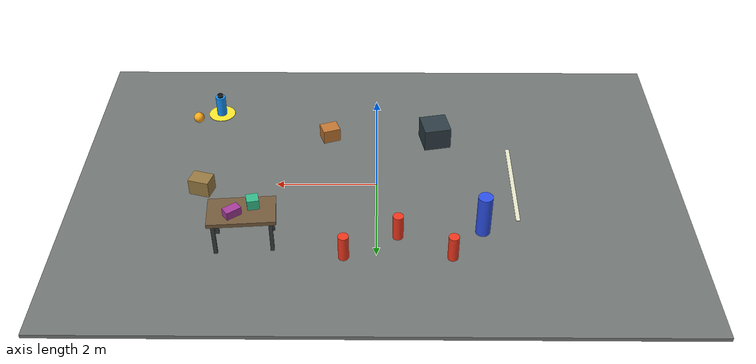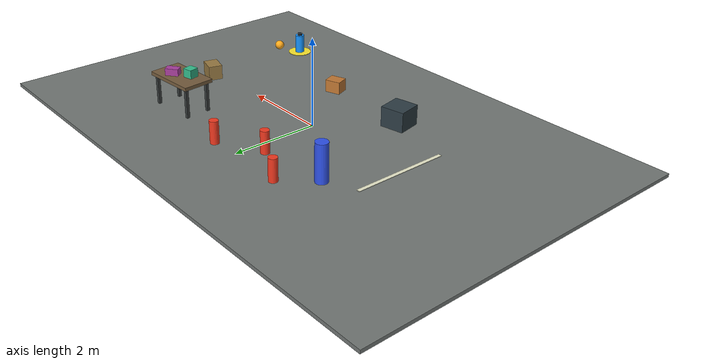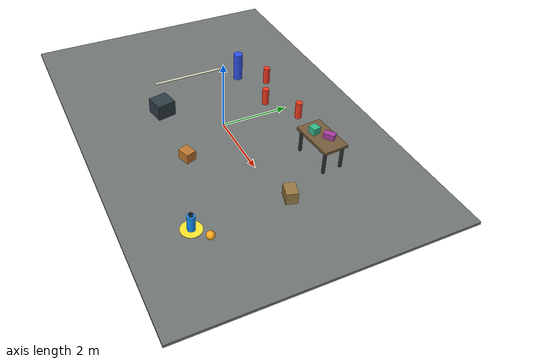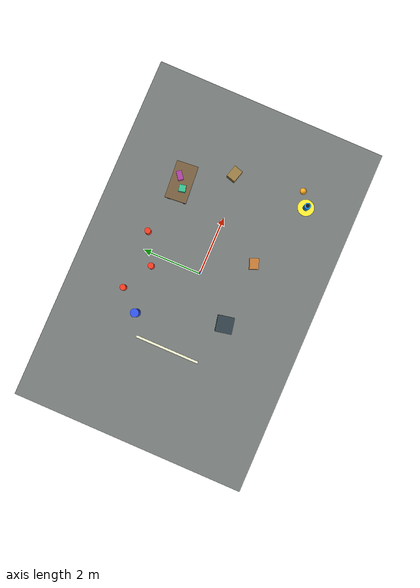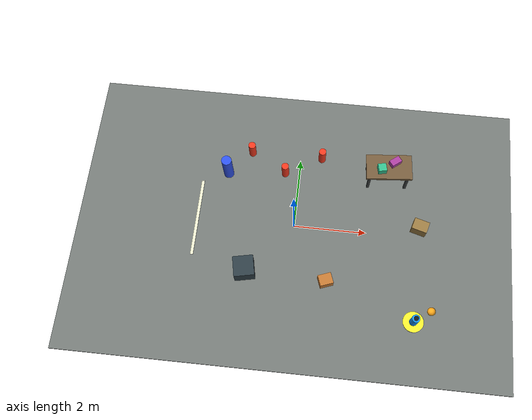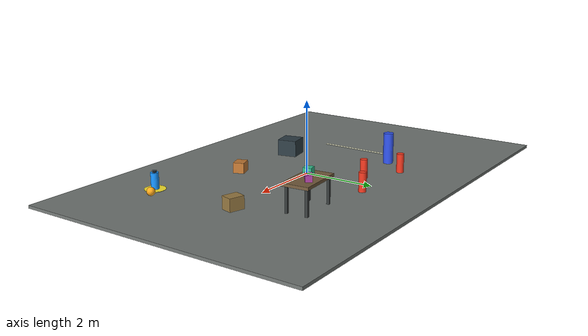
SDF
<?xml version="1.0" ?>
<sdf version="1.9">
  <world name="arachne_showroom">
    <physics name="showroom_physics" type="ignored">
      <max_step_size>0.005555556</max_step_size>
      <real_time_factor>1.0</real_time_factor>
      <real_time_update_rate>180</real_time_update_rate>
    </physics>

    <gravity>0 0 -9.80665</gravity>
    <magnetic_field>6e-06 2.3e-05 -4.2e-05</magnetic_field>
    <atmosphere type="adiabatic"/>

    <scene>
      <ambient>0.35 0.36 0.37 1</ambient>
      <background>0.78 0.82 0.86 1</background>
      <shadows>false</shadows>
    </scene>

    <light name="sun_key" type="directional">
      <pose>-3 -4 8 0.7 0.2 -0.65</pose>
      <cast_shadows>false</cast_shadows>
      <intensity>1.4</intensity>
      <direction>0.45 0.55 -0.72</direction>
      <diffuse>0.95 0.92 0.86 1</diffuse>
      <specular>0.45 0.42 0.38 1</specular>
    </light>

    <light name="soft_fill" type="point">
      <pose>2.8 -3.5 3.0 0 0 0</pose>
      <cast_shadows>false</cast_shadows>
      <intensity>0.55</intensity>
      <attenuation>
        <range>8</range>
        <linear>0.22</linear>
        <constant>0.8</constant>
        <quadratic>0.02</quadratic>
      </attenuation>
      <diffuse>0.6 0.72 0.95 1</diffuse>
    </light>

    <model name="showroom_floor">
      <static>true</static>
      <link name="floor_link">
        <collision name="floor_collision">
          <geometry>
            <box>
              <size>12 8 0.08</size>
            </box>
          </geometry>
          <surface>
            <friction>
              <ode>
                <mu>1.2</mu>
                <mu2>1.2</mu2>
              </ode>
            </friction>
          </surface>
        </collision>
        <visual name="floor_visual">
          <geometry>
            <box>
              <size>12 8 0.08</size>
            </box>
          </geometry>
          <material>
            <ambient>0.18 0.19 0.19 1</ambient>
            <diffuse>0.45 0.47 0.46 1</diffuse>
            <specular>0.18 0.18 0.17 1</specular>
            <pbr>
              <metal>
                <roughness>0.72</roughness>
                <metalness>0.0</metalness>
              </metal>
            </pbr>
          </material>
        </visual>
      </link>
    </model>

    <model name="demo_pedestal">
      <pose>-1.2 -1.4 0.25 0 0 0.2</pose>
      <static>false</static>
      <link name="pedestal_link">
        <inertial>
          <mass>4.0</mass>
          <inertia>
            <ixx>0.08</ixx>
            <iyy>0.08</iyy>
            <izz>0.12</izz>
          </inertia>
        </inertial>
        <collision name="collision">
          <geometry>
            <box>
              <size>0.55 0.55 0.5</size>
            </box>
          </geometry>
        </collision>
        <visual name="visual">
          <geometry>
            <box>
              <size>0.55 0.55 0.5</size>
            </box>
          </geometry>
          <material>
            <ambient>0.09 0.11 0.12 1</ambient>
            <diffuse>0.18 0.24 0.27 1</diffuse>
            <specular>0.2 0.2 0.2 1</specular>
          </material>
        </visual>
      </link>
    </model>

    <model name="soft_target_box">
      <pose>1.0 -1.5 0.18 0 0 0.35</pose>
      <static>false</static>
      <link name="box_link">
        <inertial>
          <mass>0.8</mass>
          <inertia>
            <ixx>0.02</ixx>
            <iyy>0.02</iyy>
            <izz>0.02</izz>
          </inertia>
        </inertial>
        <collision name="collision">
          <geometry>
            <box>
              <size>0.36 0.30 0.30</size>
            </box>
          </geometry>
        </collision>
        <visual name="visual">
          <geometry>
            <box>
              <size>0.36 0.30 0.30</size>
            </box>
          </geometry>
          <material>
            <ambient>0.38 0.20 0.08 1</ambient>
            <diffuse>0.76 0.47 0.20 1</diffuse>
            <specular>0.08 0.06 0.04 1</specular>
          </material>
        </visual>
      </link>
    </model>

    <model name="marker_column">
      <pose>-2.0 1.4 0.45 0 0 0</pose>
      <static>false</static>
      <link name="column_link">
        <inertial>
          <mass>1.2</mass>
          <inertia>
            <ixx>0.05</ixx>
            <iyy>0.05</iyy>
            <izz>0.01</izz>
          </inertia>
        </inertial>
        <collision name="collision">
          <geometry>
            <cylinder>
              <radius>0.14</radius>
              <length>0.9</length>
            </cylinder>
          </geometry>
        </collision>
        <visual name="visual">
          <geometry>
            <cylinder>
              <radius>0.14</radius>
              <length>0.9</length>
            </cylinder>
          </geometry>
          <material>
            <ambient>0.12 0.18 0.52 1</ambient>
            <diffuse>0.18 0.32 0.92 1</diffuse>
            <specular>0.25 0.28 0.40 1</specular>
          </material>
        </visual>
      </link>
    </model>

    <model name="start_lane_marker">
      <pose>-2.7 0 0.046 0 0 0</pose>
      <static>true</static>
      <link name="marker_link">
        <visual name="visual">
          <geometry>
            <box>
              <size>0.08 2.2 0.012</size>
            </box>
          </geometry>
          <material>
            <ambient>0.92 0.92 0.80 1</ambient>
            <diffuse>0.92 0.92 0.80 1</diffuse>
          </material>
        </visual>
      </link>
    </model>

    <model name="slalom_marker_a">
      <pose>-1.4 2.1 0.28 0 0 0</pose>
      <static>false</static>
      <link name="marker_link">
        <inertial>
          <mass>0.7</mass>
          <inertia>
            <ixx>0.015</ixx>
            <iyy>0.015</iyy>
            <izz>0.006</izz>
          </inertia>
        </inertial>
        <collision name="collision">
          <geometry>
            <cylinder>
              <radius>0.10</radius>
              <length>0.56</length>
            </cylinder>
          </geometry>
        </collision>
        <visual name="visual">
          <geometry>
            <cylinder>
              <radius>0.10</radius>
              <length>0.56</length>
            </cylinder>
          </geometry>
          <material>
            <ambient>0.72 0.12 0.08 1</ambient>
            <diffuse>0.95 0.22 0.12 1</diffuse>
          </material>
        </visual>
      </link>
    </model>

    <model name="slalom_marker_b">
      <pose>-0.4 1.55 0.28 0 0 0</pose>
      <static>false</static>
      <link name="marker_link">
        <inertial>
          <mass>0.7</mass>
          <inertia>
            <ixx>0.015</ixx>
            <iyy>0.015</iyy>
            <izz>0.006</izz>
          </inertia>
        </inertial>
        <collision name="collision">
          <geometry>
            <cylinder>
              <radius>0.10</radius>
              <length>0.56</length>
            </cylinder>
          </geometry>
        </collision>
        <visual name="visual">
          <geometry>
            <cylinder>
              <radius>0.10</radius>
              <length>0.56</length>
            </cylinder>
          </geometry>
          <material>
            <ambient>0.72 0.12 0.08 1</ambient>
            <diffuse>0.95 0.22 0.12 1</diffuse>
          </material>
        </visual>
      </link>
    </model>

    <model name="slalom_marker_c">
      <pose>0.6 2.1 0.28 0 0 0</pose>
      <static>false</static>
      <link name="marker_link">
        <inertial>
          <mass>0.7</mass>
          <inertia>
            <ixx>0.015</ixx>
            <iyy>0.015</iyy>
            <izz>0.006</izz>
          </inertia>
        </inertial>
        <collision name="collision">
          <geometry>
            <cylinder>
              <radius>0.10</radius>
              <length>0.56</length>
            </cylinder>
          </geometry>
        </collision>
        <visual name="visual">
          <geometry>
            <cylinder>
              <radius>0.10</radius>
              <length>0.56</length>
            </cylinder>
          </geometry>
          <material>
            <ambient>0.72 0.12 0.08 1</ambient>
            <diffuse>0.95 0.22 0.12 1</diffuse>
          </material>
        </visual>
      </link>
    </model>

    <model name="work_table">
      <pose>2.45 1.7 0.42 0 0 0.08</pose>
      <static>true</static>
      <link name="table_link">
        <collision name="top_collision">
          <pose>0 0 0.36 0 0 0</pose>
          <geometry>
            <box>
              <size>1.25 0.72 0.08</size>
            </box>
          </geometry>
        </collision>
        <visual name="top_visual">
          <pose>0 0 0.36 0 0 0</pose>
          <geometry>
            <box>
              <size>1.25 0.72 0.08</size>
            </box>
          </geometry>
          <material>
            <ambient>0.20 0.17 0.12 1</ambient>
            <diffuse>0.46 0.36 0.24 1</diffuse>
          </material>
        </visual>
        <collision name="leg_fl_collision">
          <pose>0.52 0.27 0.0 0 0 0</pose>
          <geometry>
            <box>
              <size>0.07 0.07 0.72</size>
            </box>
          </geometry>
        </collision>
        <visual name="leg_fl_visual">
          <pose>0.52 0.27 0.0 0 0 0</pose>
          <geometry>
            <box>
              <size>0.07 0.07 0.72</size>
            </box>
          </geometry>
          <material>
            <ambient>0.12 0.13 0.13 1</ambient>
            <diffuse>0.22 0.24 0.24 1</diffuse>
          </material>
        </visual>
        <collision name="leg_fr_collision">
          <pose>0.52 -0.27 0.0 0 0 0</pose>
          <geometry>
            <box>
              <size>0.07 0.07 0.72</size>
            </box>
          </geometry>
        </collision>
        <visual name="leg_fr_visual">
          <pose>0.52 -0.27 0.0 0 0 0</pose>
          <geometry>
            <box>
              <size>0.07 0.07 0.72</size>
            </box>
          </geometry>
          <material>
            <ambient>0.12 0.13 0.13 1</ambient>
            <diffuse>0.22 0.24 0.24 1</diffuse>
          </material>
        </visual>
        <collision name="leg_rl_collision">
          <pose>-0.52 0.27 0.0 0 0 0</pose>
          <geometry>
            <box>
              <size>0.07 0.07 0.72</size>
            </box>
          </geometry>
        </collision>
        <visual name="leg_rl_visual">
          <pose>-0.52 0.27 0.0 0 0 0</pose>
          <geometry>
            <box>
              <size>0.07 0.07 0.72</size>
            </box>
          </geometry>
          <material>
            <ambient>0.12 0.13 0.13 1</ambient>
            <diffuse>0.22 0.24 0.24 1</diffuse>
          </material>
        </visual>
        <collision name="leg_rr_collision">
          <pose>-0.52 -0.27 0.0 0 0 0</pose>
          <geometry>
            <box>
              <size>0.07 0.07 0.72</size>
            </box>
          </geometry>
        </collision>
        <visual name="leg_rr_visual">
          <pose>-0.52 -0.27 0.0 0 0 0</pose>
          <geometry>
            <box>
              <size>0.07 0.07 0.72</size>
            </box>
          </geometry>
          <material>
            <ambient>0.12 0.13 0.13 1</ambient>
            <diffuse>0.22 0.24 0.24 1</diffuse>
          </material>
        </visual>
      </link>
    </model>

    <model name="foam_block_a">
      <pose>2.25 1.58 0.91 0 0 0.22</pose>
      <static>false</static>
      <link name="block_link">
        <inertial>
          <mass>0.35</mass>
          <inertia>
            <ixx>0.006</ixx>
            <iyy>0.006</iyy>
            <izz>0.006</izz>
          </inertia>
        </inertial>
        <collision name="collision">
          <geometry>
            <box>
              <size>0.22 0.22 0.22</size>
            </box>
          </geometry>
        </collision>
        <visual name="visual">
          <geometry>
            <box>
              <size>0.22 0.22 0.22</size>
            </box>
          </geometry>
          <material>
            <ambient>0.10 0.42 0.32 1</ambient>
            <diffuse>0.20 0.74 0.55 1</diffuse>
          </material>
        </visual>
      </link>
    </model>

    <model name="foam_block_b">
      <pose>2.60 1.82 0.89 0 0 0.65</pose>
      <static>false</static>
      <link name="block_link">
        <inertial>
          <mass>0.28</mass>
          <inertia>
            <ixx>0.004</ixx>
            <iyy>0.004</iyy>
            <izz>0.004</izz>
          </inertia>
        </inertial>
        <collision name="collision">
          <geometry>
            <box>
              <size>0.30 0.18 0.18</size>
            </box>
          </geometry>
        </collision>
        <visual name="visual">
          <geometry>
            <box>
              <size>0.30 0.18 0.18</size>
            </box>
          </geometry>
          <material>
            <ambient>0.35 0.10 0.34 1</ambient>
            <diffuse>0.66 0.24 0.62 1</diffuse>
          </material>
        </visual>
      </link>
    </model>

    <model name="inspection_crate">
      <pose>3.45 0.25 0.22 0 0 -0.28</pose>
      <static>false</static>
      <link name="crate_link">
        <inertial>
          <mass>1.1</mass>
          <inertia>
            <ixx>0.035</ixx>
            <iyy>0.030</iyy>
            <izz>0.030</izz>
          </inertia>
        </inertial>
        <collision name="collision">
          <geometry>
            <box>
              <size>0.42 0.32 0.34</size>
            </box>
          </geometry>
        </collision>
        <visual name="visual">
          <geometry>
            <box>
              <size>0.42 0.32 0.34</size>
            </box>
          </geometry>
          <material>
            <ambient>0.28 0.22 0.12 1</ambient>
            <diffuse>0.60 0.48 0.26 1</diffuse>
          </material>
        </visual>
      </link>
    </model>

    <model name="pick_target_pad">
      <pose>3.40 -2.35 0.047 0 0 0</pose>
      <static>true</static>
      <link name="pad_link">
        <visual name="visual">
          <geometry>
            <cylinder>
              <radius>0.28</radius>
              <length>0.012</length>
            </cylinder>
          </geometry>
          <material>
            <ambient>0.90 0.82 0.12 1</ambient>
            <diffuse>1.0 0.92 0.18 1</diffuse>
          </material>
        </visual>
      </link>
    </model>

    <model name="pick_bottle">
      <pose>3.40 -2.35 0.27 0 0 0</pose>
      <static>false</static>
      <link name="bottle_link">
        <inertial>
          <mass>0.20</mass>
          <inertia>
            <ixx>0.0040</ixx>
            <iyy>0.0040</iyy>
            <izz>0.0012</izz>
          </inertia>
        </inertial>
        <collision name="body_collision">
          <geometry>
            <cylinder>
              <radius>0.105</radius>
              <length>0.44</length>
            </cylinder>
          </geometry>
          <surface>
            <friction>
              <ode>
                <mu>1.4</mu>
                <mu2>1.4</mu2>
              </ode>
            </friction>
          </surface>
        </collision>
        <visual name="body_visual">
          <geometry>
            <cylinder>
              <radius>0.105</radius>
              <length>0.44</length>
            </cylinder>
          </geometry>
          <material>
            <ambient>0.04 0.34 0.90 0.92</ambient>
            <diffuse>0.08 0.58 1.0 0.92</diffuse>
            <specular>0.28 0.35 0.42 1</specular>
          </material>
        </visual>
        <visual name="cap_visual">
          <pose>0 0 0.245 0 0 0</pose>
          <geometry>
            <cylinder>
              <radius>0.060</radius>
              <length>0.060</length>
            </cylinder>
          </geometry>
          <material>
            <ambient>0.02 0.03 0.04 1</ambient>
            <diffuse>0.05 0.08 0.10 1</diffuse>
          </material>
        </visual>
      </link>
    </model>

    <model name="pick_ball">
      <pose>3.85 -2.05 0.16 0 0 0</pose>
      <static>false</static>
      <link name="ball_link">
        <inertial>
          <mass>0.12</mass>
          <inertia>
            <ixx>0.0012</ixx>
            <iyy>0.0012</iyy>
            <izz>0.0012</izz>
          </inertia>
        </inertial>
        <collision name="collision">
          <geometry>
            <sphere>
              <radius>0.11</radius>
            </sphere>
          </geometry>
        </collision>
        <visual name="visual">
          <geometry>
            <sphere>
              <radius>0.11</radius>
            </sphere>
          </geometry>
          <material>
            <ambient>0.82 0.48 0.05 1</ambient>
            <diffuse>1.0 0.66 0.10 1</diffuse>
          </material>
        </visual>
      </link>
    </model>

    <model name="camera_view_anchor">
      <static>true</static>
      <pose>0 0 0 0 0 0</pose>
      <link name="anchor"/>
    </model>
  </world>
</sdf>
